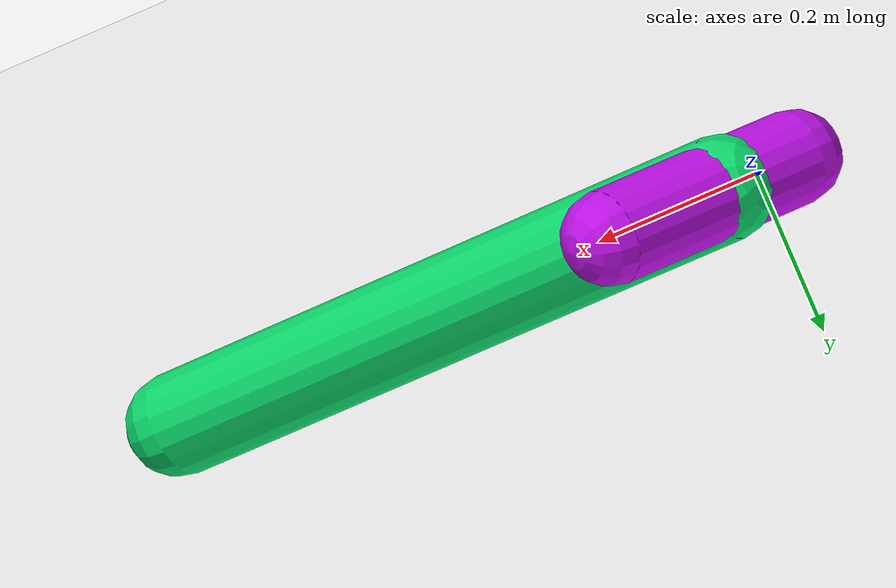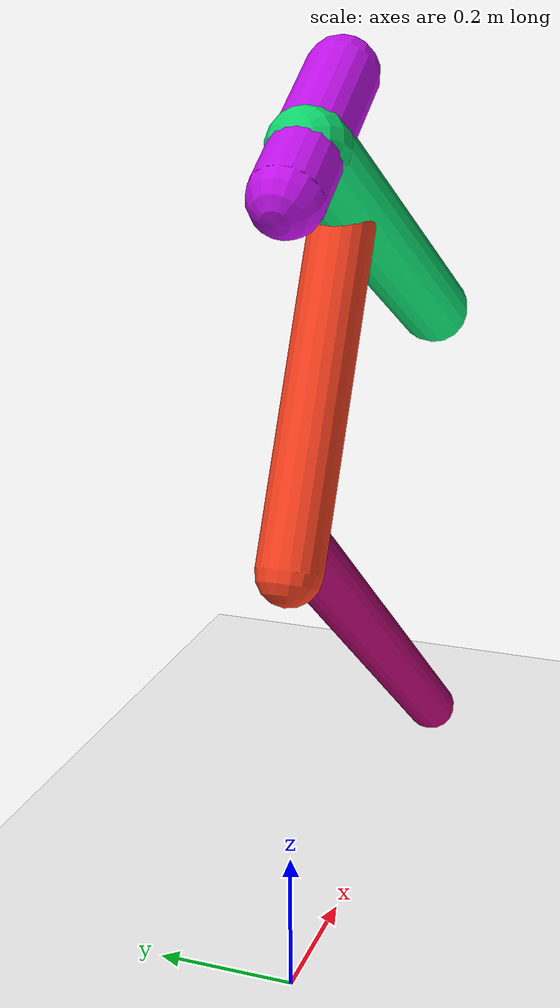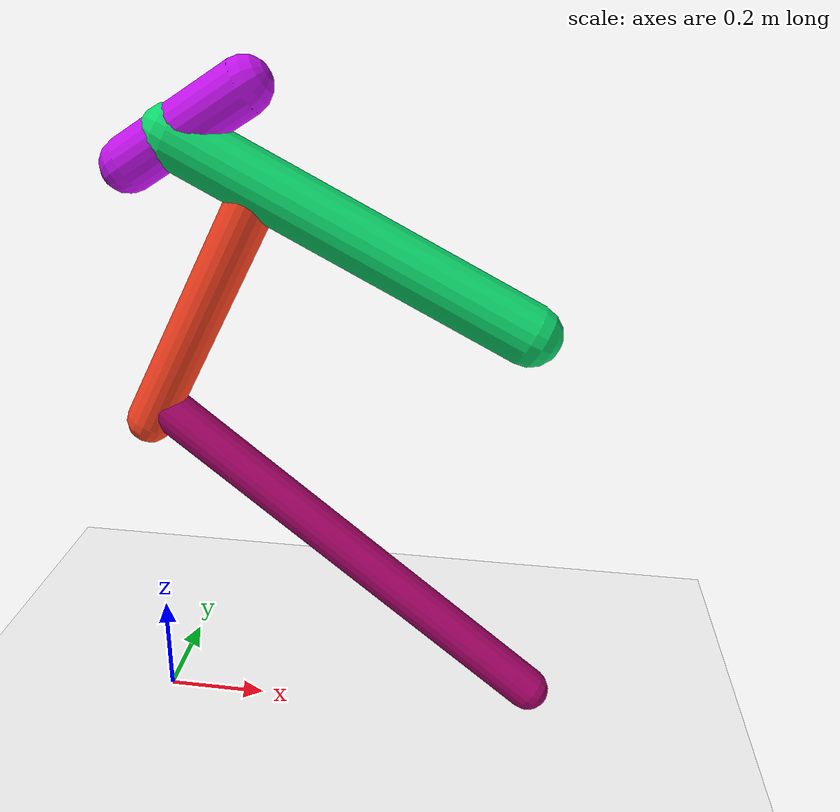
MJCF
<mujoco model="morphology">
  <option timestep="0.01"/>
  <default>
    <default class="/"/>
  </default>
  <asset>
    <texture name="texplane" type="2d" builtin="checker" rgb1="0.1 0.2 0.3" rgb2="0.2 0.3 0.4" width="300" height="300"/>
    <material name="MatPlane" class="/" texture="texplane" texrepeat="20 20" specular="1" shininess="1" reflectance="0.5"/>
  </asset>
  <worldbody>
    <light name="//unnamed_light_0" class="/" directional="true" pos="0 0 1.5" dir="0 0 -1.3" cutoff="1e+02" exponent="1" diffuse="1 1 1" specular="0.1 0.1 0.1"/>
    <geom name="ground" class="/" type="plane" size="15 15 0.5" material="MatPlane" rgba="1 1 1 1"/>
    <body name="body" pos="0 0 1.1">
      <geom name="geom0" class="/" type="capsule" contype="1" conaffinity="1" condim="3" size="0.05" rgba="0.75 0.066 0.91 1" friction="0.4 0.1 0.1" fromto="0 0 0 0.21 0 0.13"/>
      <body name="body1" pos="0.081 0 0.049">
        <geom name="geom1" class="/" type="capsule" contype="1" conaffinity="1" condim="3" size="0.056" rgba="0.045 0.84 0.42 1" friction="0.4 0.1 0.1" fromto="0 0 0 0.62 0 -0.32"/>
        <body name="body2" pos="0.15 0 -0.077">
          <geom name="geom2" class="/" type="capsule" contype="1" conaffinity="1" condim="3" size="0.045" rgba="0.96 0.25 0.12 1" friction="0.4 0.1 0.1" fromto="0 0 0 -0.23 0 -0.45"/>
          <body name="body3" pos="-0.21 0 -0.41">
            <geom name="geom3" class="/" type="capsule" contype="1" conaffinity="1" condim="3" size="0.042" rgba="0.69 0.018 0.43 1" friction="0.4 0.1 0.1" fromto="0 0 0 0.73 0 -0.58"/>
            <joint name="joint3" class="/" type="hinge" axis="0 1 0" limited="true" stiffness="20" range="-50 50" armature="0.1" damping="2"/>
          </body>
          <joint name="joint2" class="/" type="hinge" axis="0 1 0" limited="true" stiffness="20" range="-52 52" armature="0.1" damping="2"/>
        </body>
        <joint name="joint1" class="/" type="hinge" axis="0 1 0" limited="true" stiffness="20" range="-64 64" armature="0.1" damping="2"/>
      </body>
      <joint name="rootx" class="/" type="slide" axis="1 0 0" limited="false" stiffness="0" armature="0" damping="0"/>
      <joint name="rootz" class="/" type="slide" axis="0 0 1" limited="false" stiffness="0" armature="0" damping="0"/>
      <joint name="rooty" class="/" type="hinge" axis="0 1 0" limited="false" stiffness="0" armature="0" damping="0"/>
    </body>
  </worldbody>
  <actuator>
    <motor name="motor3" class="/" ctrllimited="true" ctrlrange="-1 1" gear="1.4e+02" joint="joint3"/>
    <motor name="motor2" class="/" ctrllimited="true" ctrlrange="-1 1" gear="1.8e+02" joint="joint2"/>
    <motor name="motor1" class="/" ctrllimited="true" ctrlrange="-1 1" gear="1.2e+02" joint="joint1"/>
  </actuator>
  <sensor>
    <subtreelinvel name="velocity" body="body"/>
  </sensor>
</mujoco>
